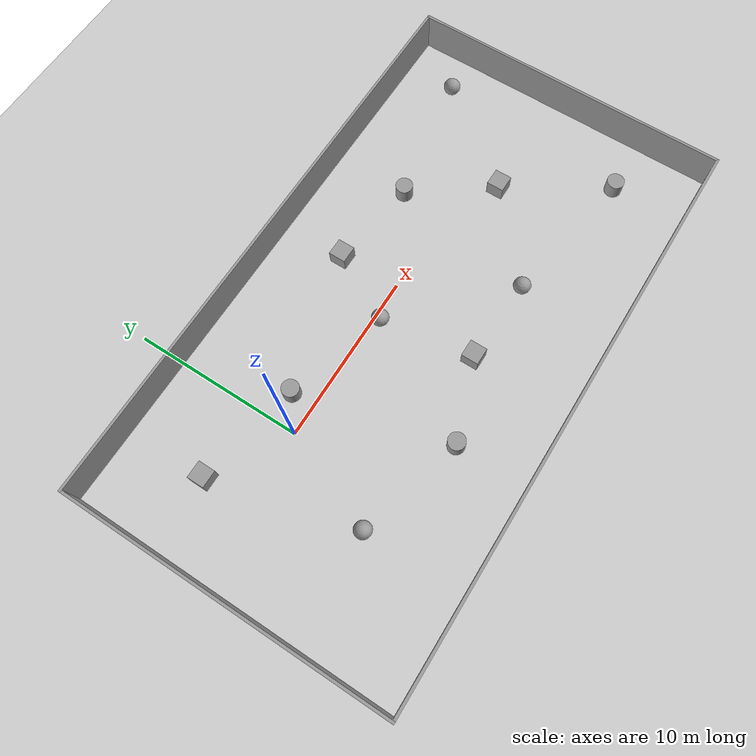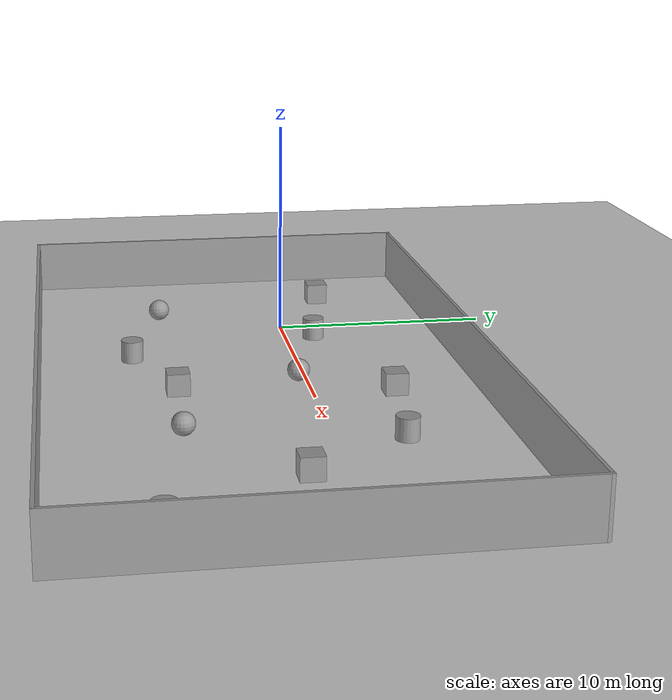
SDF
<sdf version="1.6">
 <world name="default">
  <light name="sun" type="directional">
   <pose>0 0 10 0 -0 0</pose>
   <diffuse>0.8 0.8 0.8 1</diffuse>
   <specular>0.2 0.2 0.2 1</specular>
   <attenuation>
    <range>1000</range>
    <constant>0.9</constant>
    <linear>0.01</linear>
    <quadratic>0.001</quadratic>
   </attenuation>
   <direction>-0.5 0.1 -0.9</direction>
  </light>
  <model name="ground_plane">
   <static>1</static>
   <link name="link">
    <collision name="collision">
     <geometry><plane><normal>0 0 1</normal><size>100 100</size></plane></geometry>
     <surface>
      <contact><collide_bitmask>65535</collide_bitmask></contact>
      <friction><ode><mu>100</mu><mu2>50</mu2></ode></friction>
     </surface>
    </collision>
    <visual name="visual">
     <cast_shadows>0</cast_shadows>
     <geometry><plane><normal>0 0 1</normal><size>100 100</size></plane></geometry>
     <material>
      <script><uri>file://media/materials/scripts/gazebo.material</uri><name>Gazebo/Grey</name></script>
     </material>
    </visual>
   </link>
  </model>
  <gravity>0 0 -9.8</gravity>
  <magnetic_field>6e-06 2.3e-05 -4.2e-05</magnetic_field>
  <atmosphere type="adiabatic"/>
  <physics name="default_physics" default="0" type="ode">
   <max_step_size>0.001</max_step_size>
   <real_time_factor>1</real_time_factor>
   <real_time_update_rate>1000</real_time_update_rate>
  </physics>
  <scene><ambient>0.4 0.4 0.4 1</ambient><background>0.7 0.7 0.7 1</background><shadows>1</shadows></scene>
  <audio><device>default</device></audio>
  <spherical_coordinates>
   <surface_model>EARTH_WGS84</surface_model>
   <latitude_deg>0</latitude_deg>
   <longitude_deg>0</longitude_deg>
   <elevation>0</elevation>
   <heading_deg>0</heading_deg>
  </spherical_coordinates>
  <model name="scene_0">
   <pose>8.26479 -2.21262 0 0 -0 0</pose>
   <link name="Wall_10">
    <collision name="Wall_10_Collision">
     <geometry><box><size>19.25 0.15 2.5</size></box></geometry>
     <pose>0 0 1.25 0 -0 0</pose>
    </collision>
    <visual name="Wall_10_Visual">
     <pose>0 0 1.25 0 -0 0</pose>
     <geometry><box><size>19.25 0.15 2.5</size></box></geometry>
     <material>
      <script><uri>file://media/materials/scripts/gazebo.material</uri><name>Gazebo/Grey</name></script>
      <ambient>1 1 1 1</ambient>
     </material>
     <meta><layer>0</layer></meta>
    </visual>
    <pose>16.925 -0 0 0 -0 1.5708</pose>
   </link>
   <link name="Wall_11">
    <collision name="Wall_11_Collision">
     <geometry><box><size>34 0.15 2.5</size></box></geometry>
     <pose>0 0 1.25 0 -0 0</pose>
    </collision>
    <visual name="Wall_11_Visual">
     <pose>0 0 1.25 0 -0 0</pose>
     <geometry><box><size>34 0.15 2.5</size></box></geometry>
     <material>
      <script><uri>file://media/materials/scripts/gazebo.material</uri><name>Gazebo/Grey</name></script>
      <ambient>1 1 1 1</ambient>
     </material>
     <meta><layer>0</layer></meta>
    </visual>
    <pose>-0 9.55 0 0 -0 3.14159</pose>
   </link>
   <link name="Wall_8">
    <collision name="Wall_8_Collision">
     <geometry><box><size>19.25 0.15 2.5</size></box></geometry>
     <pose>0 0 1.25 0 -0 0</pose>
    </collision>
    <visual name="Wall_8_Visual">
     <pose>0 0 1.25 0 -0 0</pose>
     <geometry><box><size>19.25 0.15 2.5</size></box></geometry>
     <material>
      <script><uri>file://media/materials/scripts/gazebo.material</uri><name>Gazebo/Grey</name></script>
      <ambient>1 1 1 1</ambient>
     </material>
     <meta><layer>0</layer></meta>
    </visual>
    <pose>-16.925 -0 0 0 -0 -1.5708</pose>
   </link>
   <link name="Wall_9">
    <collision name="Wall_9_Collision">
     <geometry><box><size>34 0.15 2.5</size></box></geometry>
     <pose>0 0 1.25 0 -0 0</pose>
    </collision>
    <visual name="Wall_9_Visual">
     <pose>0 0 1.25 0 -0 0</pose>
     <geometry><box><size>34 0.15 2.5</size></box></geometry>
     <material>
      <script><uri>file://media/materials/scripts/gazebo.material</uri><name>Gazebo/Grey</name></script>
      <ambient>1 1 1 1</ambient>
     </material>
     <meta><layer>0</layer></meta>
    </visual>
    <pose>-0 -9.55 0 0 -0 0</pose>
   </link>
   <static>1</static>
  </model>
  <model name="unit_box">
   <pose>-4.34828 2.53783 0.5 0 -0 0</pose>
   <link name="link">
    <inertial>
     <mass>1</mass>
     <inertia>
      <ixx>0.166667</ixx>
      <ixy>0</ixy>
      <ixz>0</ixz>
      <iyy>0.166667</iyy>
      <iyz>0</iyz>
      <izz>0.166667</izz>
     </inertia>
    </inertial>
    <collision name="collision"><geometry><box><size>1 1 1</size></box></geometry></collision>
    <visual name="visual">
     <geometry><box><size>1 1 1</size></box></geometry>
     <material>
      <script><name>Gazebo/Grey</name><uri>file://media/materials/scripts/gazebo.material</uri></script>
     </material>
    </visual>
   </link>
  </model>
  <model name="unit_sphere">
   <pose>-2.26715 -5.8209 0.5 0 -0 0</pose>
   <link name="link">
    <inertial>
     <mass>1</mass>
     <inertia><ixx>0.1</ixx><ixy>0</ixy><ixz>0</ixz><iyy>0.1</iyy><iyz>0</iyz><izz>0.1</izz></inertia>
    </inertial>
    <collision name="collision"><geometry><sphere><radius>0.5</radius></sphere></geometry></collision>
    <visual name="visual">
     <geometry><sphere><radius>0.5</radius></sphere></geometry>
     <material>
      <script><name>Gazebo/Grey</name><uri>file://media/materials/scripts/gazebo.material</uri></script>
     </material>
    </visual>
   </link>
  </model>
  <model name="unit_cylinder">
   <pose>1.74326 1.34062 0.5 0 -0 0</pose>
   <link name="link">
    <inertial>
     <mass>1</mass>
     <inertia><ixx>0.145833</ixx><ixy>0</ixy><ixz>0</ixz><iyy>0.145833</iyy><iyz>0</iyz><izz>0.125</izz></inertia>
    </inertial>
    <collision name="collision">
     <geometry><cylinder><radius>0.5</radius><length>1</length></cylinder></geometry>
    </collision>
    <visual name="visual">
     <geometry><cylinder><radius>0.5</radius><length>1</length></cylinder></geometry>
     <material>
      <script><name>Gazebo/Grey</name><uri>file://media/materials/scripts/gazebo.material</uri></script>
     </material>
    </visual>
   </link>
  </model>
  <model name="unit_box_0">
   <pose>9.82338 3.5246 0.5 0 -0 0</pose>
   <link name="link">
    <inertial>
     <mass>1</mass>
     <inertia>
      <ixx>0.166667</ixx>
      <ixy>0</ixy>
      <ixz>0</ixz>
      <iyy>0.166667</iyy>
      <iyz>0</iyz>
      <izz>0.166667</izz>
     </inertia>
    </inertial>
    <collision name="collision"><geometry><box><size>1 1 1</size></box></geometry></collision>
    <visual name="visual">
     <geometry><box><size>1 1 1</size></box></geometry>
     <material>
      <script><name>Gazebo/Grey</name><uri>file://media/materials/scripts/gazebo.material</uri></script>
     </material>
    </visual>
   </link>
  </model>
  <model name="unit_box_1">
   <pose>8.58338 -5.79423 0.5 0 -0 0</pose>
   <link name="link">
    <inertial>
     <mass>1</mass>
     <inertia>
      <ixx>0.166667</ixx>
      <ixy>0</ixy>
      <ixz>0</ixz>
      <iyy>0.166667</iyy>
      <iyz>0</iyz>
      <izz>0.166667</izz>
     </inertia>
    </inertial>
    <collision name="collision"><geometry><box><size>1 1 1</size></box></geometry></collision>
    <visual name="visual">
     <geometry><box><size>1 1 1</size></box></geometry>
     <material>
      <script><name>Gazebo/Grey</name><uri>file://media/materials/scripts/gazebo.material</uri></script>
     </material>
    </visual>
   </link>
  </model>
  <model name="unit_box_2">
   <pose>18.405 -1.66084 0.5 0 -0 0</pose>
   <link name="link">
    <inertial>
     <mass>1</mass>
     <inertia>
      <ixx>0.166667</ixx>
      <ixy>0</ixy>
      <ixz>0</ixz>
      <iyy>0.166667</iyy>
      <iyz>0</iyz>
      <izz>0.166667</izz>
     </inertia>
    </inertial>
    <collision name="collision"><geometry><box><size>1 1 1</size></box></geometry></collision>
    <visual name="visual">
     <geometry><box><size>1 1 1</size></box></geometry>
     <material>
      <script><name>Gazebo/Grey</name><uri>file://media/materials/scripts/gazebo.material</uri></script>
     </material>
    </visual>
   </link>
  </model>
  <model name="unit_sphere_0">
   <pose>13.5395 -5.98415 0.5 0 -0 0</pose>
   <link name="link">
    <inertial>
     <mass>1</mass>
     <inertia><ixx>0.1</ixx><ixy>0</ixy><ixz>0</ixz><iyy>0.1</iyy><iyz>0</iyz><izz>0.1</izz></inertia>
    </inertial>
    <collision name="collision"><geometry><sphere><radius>0.5</radius></sphere></geometry></collision>
    <visual name="visual">
     <geometry><sphere><radius>0.5</radius></sphere></geometry>
     <material>
      <script><name>Gazebo/Grey</name><uri>file://media/materials/scripts/gazebo.material</uri></script>
     </material>
    </visual>
   </link>
  </model>
  <model name="unit_sphere_1">
   <pose>7.7472 -0.360332 0.5 0 -0 0</pose>
   <link name="link">
    <inertial>
     <mass>1</mass>
     <inertia><ixx>0.1</ixx><ixy>0</ixy><ixz>0</ixz><iyy>0.1</iyy><iyz>0</iyz><izz>0.1</izz></inertia>
    </inertial>
    <collision name="collision"><geometry><sphere><radius>0.5</radius></sphere></geometry></collision>
    <visual name="visual">
     <geometry><sphere><radius>0.5</radius></sphere></geometry>
     <material>
      <script><name>Gazebo/Grey</name><uri>file://media/materials/scripts/gazebo.material</uri></script>
     </material>
    </visual>
   </link>
  </model>
  <model name="unit_cylinder_0">
   <pose>3.95237 -7.50499 0.5 0 -0 0</pose>
   <link name="link">
    <inertial>
     <mass>1</mass>
     <inertia><ixx>0.145833</ixx><ixy>0</ixy><ixz>0</ixz><iyy>0.145833</iyy><iyz>0</iyz><izz>0.125</izz></inertia>
    </inertial>
    <collision name="collision">
     <geometry><cylinder><radius>0.5</radius><length>1</length></cylinder></geometry>
    </collision>
    <visual name="visual">
     <geometry><cylinder><radius>0.5</radius><length>1</length></cylinder></geometry>
     <material>
      <script><name>Gazebo/Grey</name><uri>file://media/materials/scripts/gazebo.material</uri></script>
     </material>
    </visual>
   </link>
  </model>
  <model name="unit_cylinder_1">
   <pose>15.1964 2.80082 0.5 0 -0 0</pose>
   <link name="link">
    <inertial>
     <mass>1</mass>
     <inertia><ixx>0.145833</ixx><ixy>0</ixy><ixz>0</ixz><iyy>0.145833</iyy><iyz>0</iyz><izz>0.125</izz></inertia>
    </inertial>
    <collision name="collision">
     <geometry><cylinder><radius>0.5</radius><length>1</length></cylinder></geometry>
    </collision>
    <visual name="visual">
     <geometry><cylinder><radius>0.5</radius><length>1</length></cylinder></geometry>
     <material>
      <script><name>Gazebo/Grey</name><uri>file://media/materials/scripts/gazebo.material</uri></script>
     </material>
    </visual>
   </link>
  </model>
  <model name="unit_cylinder_2">
   <pose>21.927 -7.38934 0.5 0 -0 0</pose>
   <link name="link">
    <inertial>
     <mass>1</mass>
     <inertia><ixx>0.145833</ixx><ixy>0</ixy><ixz>0</ixz><iyy>0.145833</iyy><iyz>0</iyz><izz>0.125</izz></inertia>
    </inertial>
    <collision name="collision">
     <geometry><cylinder><radius>0.5</radius><length>1</length></cylinder></geometry>
    </collision>
    <visual name="visual">
     <geometry><cylinder><radius>0.5</radius><length>1</length></cylinder></geometry>
     <material>
      <script><name>Gazebo/Grey</name><uri>file://media/materials/scripts/gazebo.material</uri></script>
     </material>
    </visual>
   </link>
  </model>
  <model name="unit_sphere_2">
   <pose>22.8704 4.19016 0.5 0 -0 0</pose>
   <link name="link">
    <inertial>
     <mass>1</mass>
     <inertia><ixx>0.1</ixx><ixy>0</ixy><ixz>0</ixz><iyy>0.1</iyy><iyz>0</iyz><izz>0.1</izz></inertia>
    </inertial>
    <collision name="collision"><geometry><sphere><radius>0.5</radius></sphere></geometry></collision>
    <visual name="visual">
     <geometry><sphere><radius>0.5</radius></sphere></geometry>
     <material>
      <script><name>Gazebo/Grey</name><uri>file://media/materials/scripts/gazebo.material</uri></script>
     </material>
    </visual>
   </link>
  </model>
 </world>
</sdf>
